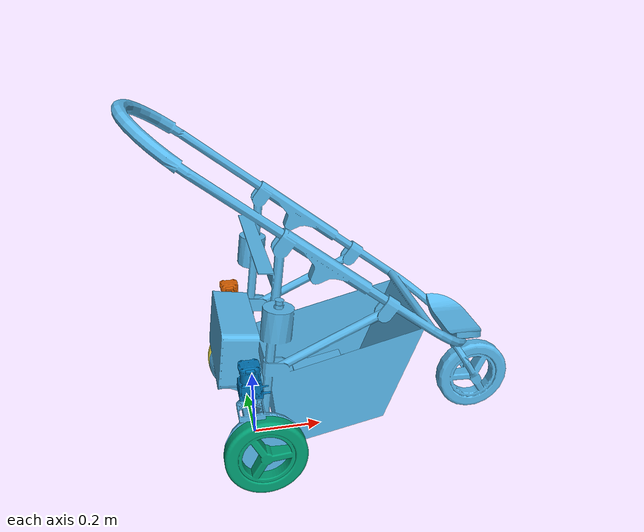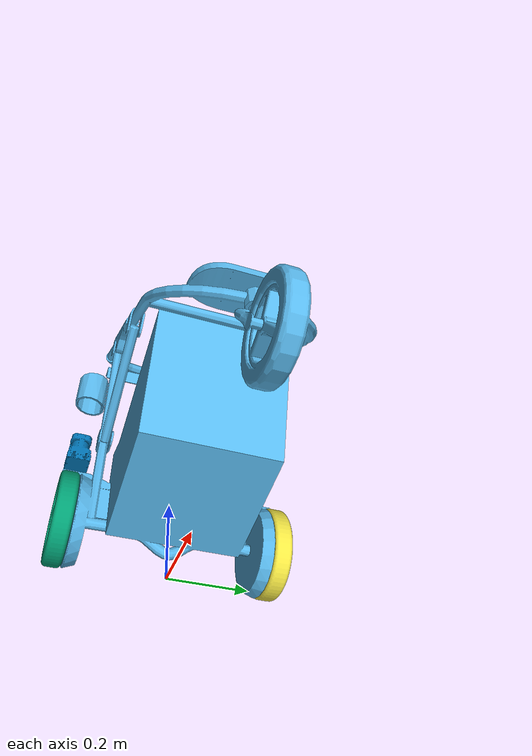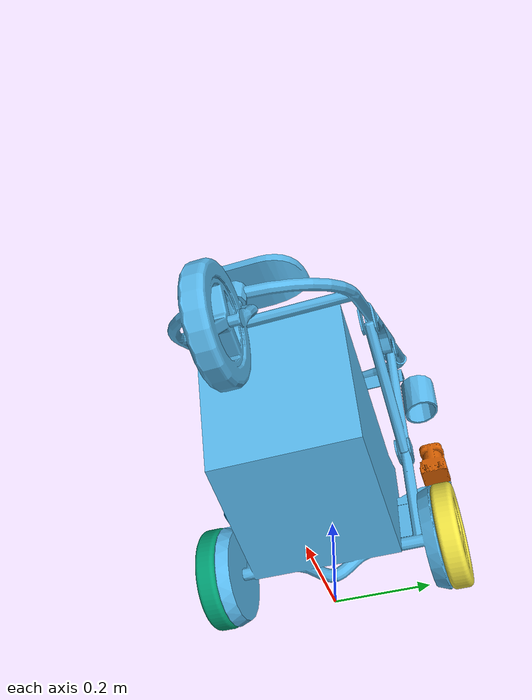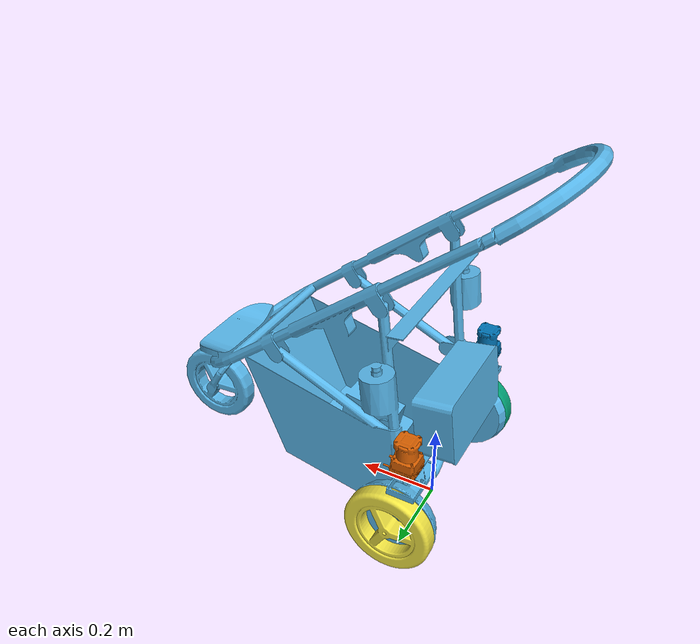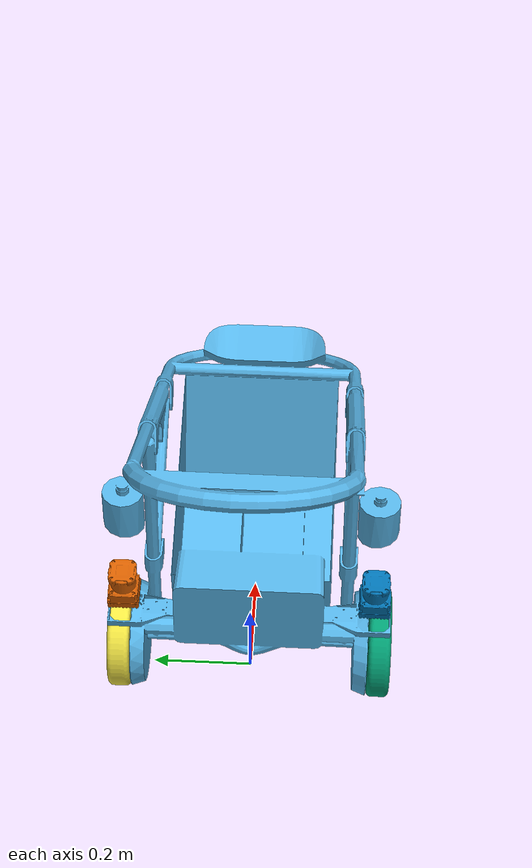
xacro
<?xml version="1.0"?>
<robot name="rab" xmlns:xacro="http://ros.org/wiki/xacro">

   <xacro:include filename="$(find rab_description)/urdf/base/base.urdf.xacro"/>
   <xacro:include filename="$(find rab_description)/urdf/wheel/wheel.urdf.xacro"/>
   <xacro:include filename="$(find rab_description)/urdf/sensors/lrf/lrf.urdf.xacro"/>

   <!-- ============== Link & Joint =================== -->
   <!-- base -->
   <link name="base_footprint"/>
   <xacro:base_v0 parent="base_footprint">
         <origin xyz="0 0 0.11"/>
   </xacro:base_v0>

   <!-- wheel -->
   <!-- right_wheel -->
   <xacro:wheel_v0 prefix="right" parent="base_link">
         <origin xyz="0 -0.262 0"/>
	 <axis xyz="0 1 0"/>
   </xacro:wheel_v0>
   <!-- left_wheel -->
   <xacro:wheel_v0 prefix="left" parent="base_link">
         <origin xyz="0 0.262 0" rpy="0 0 -${M_PI}"/>
	 <axis xyz="0 -1 0"/>
   </xacro:wheel_v0>

   <!-- sensors -->
   <!-- right_lrf -->
   <xacro:lrf_v0 prefix="right" parent="base_link">
         <origin xyz="-0.032 -0.246 0.185" rpy="0 0 -1.57" />
   </xacro:lrf_v0>
   <!-- left_lrf -->
   <xacro:lrf_v0 prefix="left" parent="base_link">
         <origin xyz="-0.032 0.246 0.185" rpy="0 0 1.57" />
   </xacro:lrf_v0>

   <link name="lrf_link"/>
   <joint name="lrf_link_joint" type="fixed">
         <parent link="base_link"/>
	 <child link="lrf_link"/>
	 <origin xyz="-0.032 0 0.137"/>
   </joint>

   <link name="3d_sensor_link"/>
   <joint name="3d_sensor_link_joint" type="fixed">
         <parent link="base_link"/>
	 <child link="3d_sensor_link"/>
	 <origin xyz="0.59 0 0.265"/>
   </joint>

   <!-- =========== transmission ============= -->
   <xacro:wheel_trans_v0 prefix="right"/>
   <xacro:wheel_trans_v0 prefix="left"/>

   <!-- =========== gazebo ============ -->
   <gazebo>
     <plugin name="gazebo_ros_control" filename="libgazebo_ros_control.so">
     </plugin>
   </gazebo>

   <!-- base -->
   <xacro:base_gazebo_v0/>

   <!-- wheel -->
   <xacro:wheel_gazebo_v0 prefix="right"/>
   <xacro:wheel_gazebo_v0 prefix="left"/>

   <!-- LRF -->
   <xacro:lrf_gazebo_v0 prefix="right" min_rad="-2.35619449019" max_rad="1.69297"
                                       min_range="0.10" max_range="30.0" />
   <xacro:lrf_gazebo_v0 prefix="left"  min_rad="-1.69297" max_rad="2.35619449019"
                                       min_range="0.10" max_range="30.0" />

</robot>

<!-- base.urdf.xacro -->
<robot xmlns:xacro="http://ros.org/wiki/xacro">

   <xacro:include filename="$(find rab_description)/urdf/base/base.gazebo.xacro"/>

   <xacro:macro name="base_v0" params="parent *joint_origin">
         <joint name="base_link_joint" type="fixed">
	     <insert_block name="joint_origin"/>
	     <parent link="${parent}"/>
	     <child link="base_link"/>
	 </joint>

	 <link name="base_link">
	    <visual>
	        <geometry>
		   <mesh filename="package://rab_description/meshes/DAE/base/base_link.dae"/>
		</geometry>
	    </visual>
	    <collision>
	        <geometry>
		   <mesh filename="package://rab_description/meshes/STL/base_link.stl"/>
		</geometry>
	    </collision>
	    <inertial>
	        <origin xyz="0.39 0 0.13" />
		<mass value="21.505" />
		<inertia ixx="1.338" ixy="0" ixz="0"
		         iyy="3.407" iyz="0" izz="2.634"/>
	    </inertial>
	 </link>
   </xacro:macro>

</robot>

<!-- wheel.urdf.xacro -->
<robot xmlns:xacro="http://ros.org/wiki/xacro">

   <xacro:include filename="$(find rab_description)/urdf/common.xacro"/>
   <xacro:include filename="$(find rab_description)/urdf/wheel/wheel.transmission.xacro"/>
   <xacro:include filename="$(find rab_description)/urdf/wheel/wheel.gazebo.xacro"/>

   <property name="wheel_radius" value="0.110"/>
   <property name="wheel_length" value="0.045"/>
   <property name="wheel_mass" value="1.0" />

   <xacro:macro name="wheel_v0" params="prefix parent *joint_origin *joint_axis">
         <joint name="${prefix}_wheel_joint" type="continuous">
	    <insert_block name="joint_origin"/>
	    <parent link="${parent}"/>
	    <child link="${prefix}_wheel_link"/>
	    <insert_block name="joint_axis"/>
	 </joint>

	 <link name="${prefix}_wheel_link">
	    <visual>
	       <geometry>
	          <mesh filename="package://rab_description/meshes/DAE/wheel/${prefix}_wheel_link.dae"/>
	       </geometry>
	    </visual>
	    <collision>
	       <origin xyz="0 0 0" rpy="${-M_PI/2} 0 0"/>
 	       <geometry>
	          <cylinder radius="${wheel_radius}" length="${wheel_length}"/>
	       </geometry>
	    </collision>
	    <inertial>
	       <origin xyz="0 0 0" rpy="${M_PI/2} 0 0"/>
	       <cylinder_inertial mass="${wheel_mass}"
                                  radius="${wheel_radius}" length="${wheel_length}"/>
	    </inertial>
	 </link>
   </xacro:macro>

</robot>

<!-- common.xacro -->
<robot xmlns:xacro="http://ros.org/wiki/xacro">
  <property name="M_PI" value="3.14159274"/>

  <xacro:macro name="cylinder_inertial" params="mass radius length">
        <mass value="${mass}"/>
	<inertia ixx="${((radius*radius)/4 + (length*length)/12) * mass}" ixy="0" ixz="0"
	         iyy="${((radius*radius)/4 + (length*length)/12) * mass}" iyz="0"
		 izz="${(mass*radius*radius)/2}" />
  </xacro:macro>

  <xacro:macro name="box_inertial" params="mass height width depth">
        <mass value="${mass}"/>
	<inertia ixx="${(mass*(width+depth*depth))/12}" ixy="0" ixz="0"
	         iyy="${(mass*(height*height+depth*depth))/12}" iyz="0"
		 izz="${(mass*(height*height+width*width))/12}" />
  </xacro:macro>
</robot>

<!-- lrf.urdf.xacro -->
<robot xmlns:xacro="http://ros.org/wiki/xacro">

  <xacro:include filename="$(find rab_description)/urdf/common.xacro"/>
  <xacro:include filename="$(find rab_description)/urdf/sensors/lrf/lrf.gazebo.xacro"/>

  <xacro:macro name="lrf_v0" params="prefix parent *joint_origin">
    <joint name="${prefix}_lrf_joint" type="fixed">
      <insert_block name="joint_origin"/>
      <parent link="${parent}"/>
      <child link="${prefix}_lrf_link"/>
    </joint>

    <link name="${prefix}_lrf_link">
      <visual>
        <geometry>
	  <mesh filename="package://rab_description/meshes/DAE/lrf/${prefix}_lrf_link.dae"/>
	</geometry>
      </visual>
      <collision>
      <origin xyz="0 0 -0.055"/>
        <geometry>
	  <mesh filename="package://rab_description/meshes/STL/${prefix}_lrf_link.stl"/>
	</geometry>
      </collision>
      <inertial>
        <origin xyz="0 0 0"/>
	<box_inertial mass="0.4" height="0.07" width="0.07" depth="0.08"/>
      </inertial>
    </link>

  </xacro:macro>

</robot>
